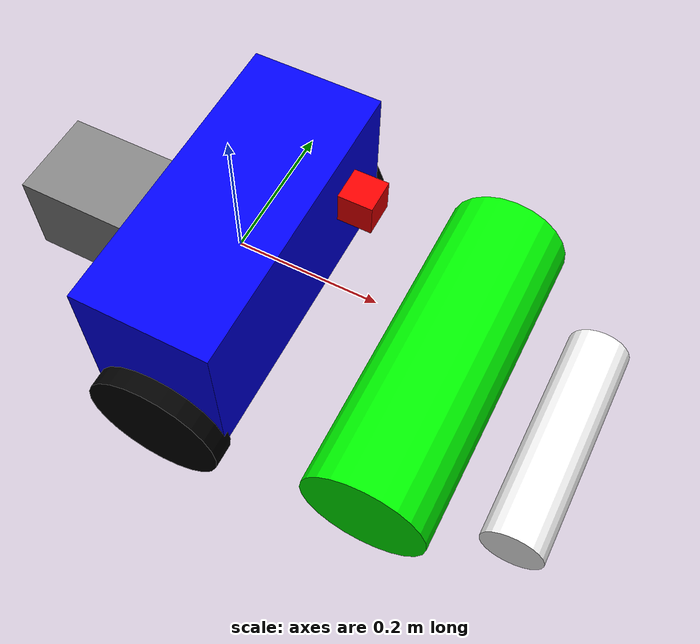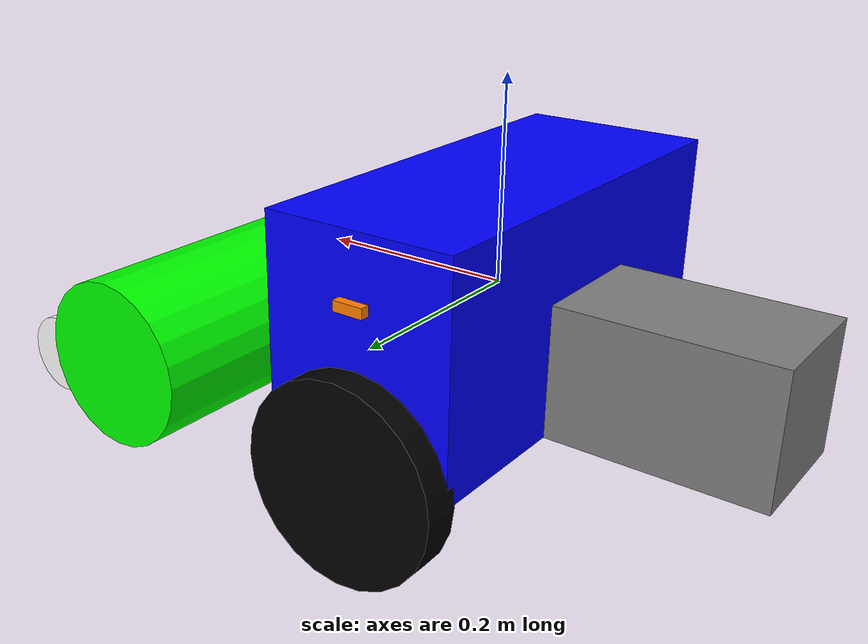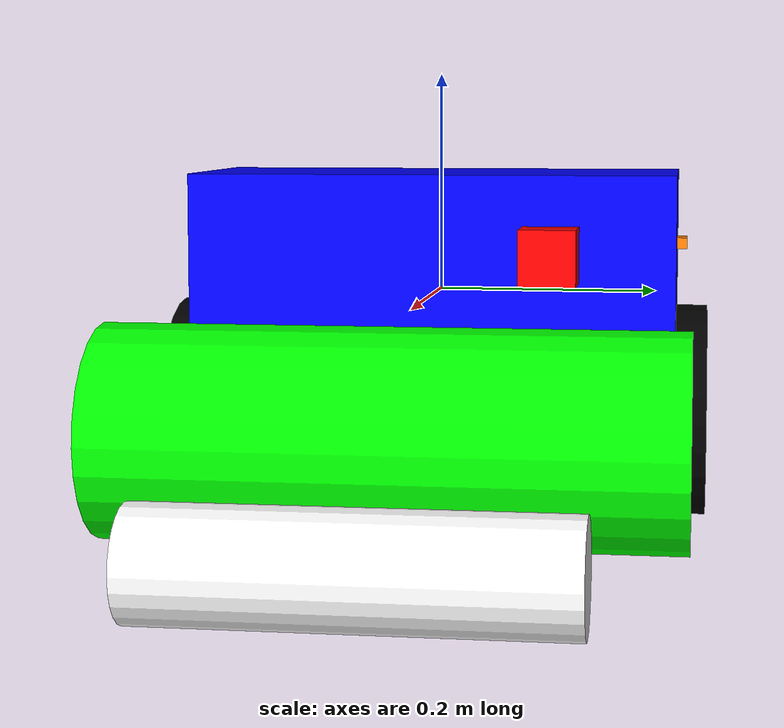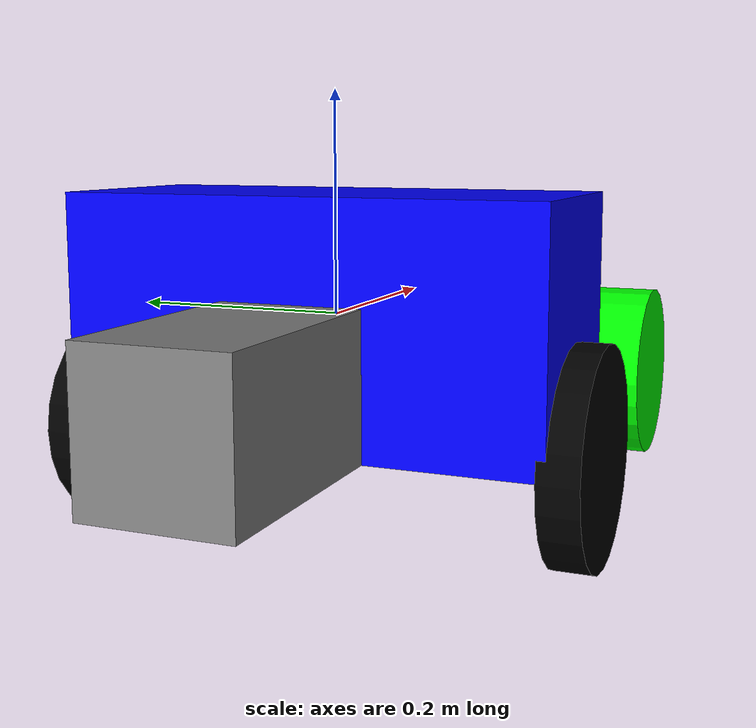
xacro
<?xml version="1.0"?>
<robot xmlns:xacro="http://www.ros.org/wiki/xacro" name="robotic_reel_mower">

  <!-- Xacro Properties for Dimensions -->
  <xacro:property name="chassis_length" value="0.19" />
  <xacro:property name="chassis_width" value="0.44" />
  <xacro:property name="chassis_height" value="0.22" />
  <xacro:property name="chassis_mass" value="2.27" />

  <xacro:property name="counterweight_length" value="0.21" />
  <xacro:property name="counterweight_width" value="0.13" />
  <xacro:property name="counterweight_height" value="0.13" />
  <xacro:property name="counterweight_mass" value="9.07" />

  <xacro:property name="wheel_radius" value="0.0975" />
  <xacro:property name="wheel_width" value="0.036" />
  <xacro:property name="wheel_mass" value="1.81" />
  <xacro:property name="wheel_separation" value="0.46" />

  <xacro:property name="front_roller_radius" value="0.04445" />
  <xacro:property name="front_roller_width" value="0.33" />
  <xacro:property name="front_roller_mass" value="0.45" />

  <xacro:property name="reel_radius" value="0.0875" />
  <xacro:property name="reel_width" value="0.47" />
  <xacro:property name="reel_mass" value="11.34" />

  <xacro:property name="reel_motor_mass" value="1.0" />

  <!-- IMU sensor position -->
  <xacro:property name="imu_x" value="0.0775" />
  <xacro:property name="imu_y" value="0.0875" />
  <xacro:property name="imu_z" value="0.169" />

  <!-- GPS sensor position -->
  <xacro:property name="gps_x" value="0.0" />
  <xacro:property name="gps_y" value="0.21415" />
  <xacro:property name="gps_z" value="0.253" />

  <!-- Base Link (using exactly the structure Gazebo expects) -->
  <link name="base_link">
    <inertial>
      <origin xyz="0 0 0" rpy="0 0 0"/>
      <mass value="${chassis_mass}"/>
      <inertia ixx="${chassis_mass * (chassis_width*chassis_width + chassis_height*chassis_height) / 12}"
               ixy="0.0" ixz="0.0"
               iyy="${chassis_mass * (chassis_length*chassis_length + chassis_height*chassis_height) / 12}"
               iyz="0.0"
               izz="${chassis_mass * (chassis_length*chassis_length + chassis_width*chassis_width) / 12}"/>
    </inertial>
    <visual>
      <origin xyz="0 0 0" rpy="0 0 0"/>
      <geometry>
        <box size="${chassis_length} ${chassis_width} ${chassis_height}"/>
      </geometry>
      <material name="blue">
        <color rgba="0.0 0.0 1.0 1.0"/>
      </material>
    </visual>
    <collision>
      <origin xyz="0 0 0" rpy="0 0 0"/>
      <geometry>
        <box size="${chassis_length} ${chassis_width} ${chassis_height}"/>
      </geometry>
    </collision>
  </link>

  <!-- Counterweight Link -->
  <link name="counterweight">
    <visual>
      <geometry>
        <box size="${counterweight_length} ${counterweight_width} ${counterweight_height}"/>
      </geometry>
      <material name="gray">
        <color rgba="0.5 0.5 0.5 1.0"/>
      </material>
    </visual>
    <collision>
      <geometry>
        <box size="${counterweight_length} ${counterweight_width} ${counterweight_height}"/>
      </geometry>
    </collision>
    <inertial>
      <mass value="${counterweight_mass}"/>
      <inertia ixx="${counterweight_mass * (counterweight_width*counterweight_width + counterweight_height*counterweight_height) / 12}"
               ixy="0.0" ixz="0.0"
               iyy="${counterweight_mass * (counterweight_length*counterweight_length + counterweight_height*counterweight_height) / 12}"
               iyz="0.0"
               izz="${counterweight_mass * (counterweight_length*counterweight_length + counterweight_width*counterweight_width) / 12}"/>
    </inertial>
  </link>

  <!-- Counterweight Joint -->
  <joint name="chassis_to_counterweight" type="fixed">
    <parent link="base_link"/>
    <child link="counterweight"/>
    <origin xyz="-${(chassis_length + counterweight_length)/2} 0.0 -${(chassis_height - counterweight_height)/2}" rpy="0 0 0"/>
  </joint>

  <!-- Right Wheel Link -->
  <link name="right_wheel">
    <visual>
      <origin xyz="0 0 0" rpy="${pi/2} 0 0"/>
      <geometry>
        <cylinder radius="${wheel_radius}" length="${wheel_width}"/>
      </geometry>
      <material name="black">
        <color rgba="0.0 0.0 0.0 1.0"/>
      </material>
    </visual>
    <collision>
      <origin xyz="0 0 0" rpy="${pi/2} 0 0"/>
      <geometry>
        <cylinder radius="${wheel_radius}" length="${wheel_width}"/>
      </geometry>
    </collision>
    <inertial>
      <mass value="${wheel_mass}"/>
      <inertia ixx="${wheel_mass * (3*wheel_radius*wheel_radius + wheel_width*wheel_width) / 12}"
               ixy="0.0" ixz="0.0"
               iyy="${wheel_mass * wheel_radius*wheel_radius / 2}"
               iyz="0.0"
               izz="${wheel_mass * (3*wheel_radius*wheel_radius + wheel_width*wheel_width) / 12}"/>
    </inertial>
  </link>

  <!-- Right Wheel Joint -->
  <joint name="right_wheel_joint" type="continuous">
    <parent link="base_link"/>
    <child link="right_wheel"/>
    <origin xyz="0.0 -${wheel_separation/2} -${chassis_height/2}" rpy="0 0 0"/>
    <axis xyz="0 1 0"/>
  </joint>

  <!-- Left Wheel Link -->
  <link name="left_wheel">
    <visual>
      <origin xyz="0 0 0" rpy="${pi/2} 0 0"/>
      <geometry>
        <cylinder radius="${wheel_radius}" length="${wheel_width}"/>
      </geometry>
      <material name="black">
        <color rgba="0.0 0.0 0.0 1.0"/>
      </material>
    </visual>
    <collision>
      <origin xyz="0 0 0" rpy="${pi/2} 0 0"/>
      <geometry>
        <cylinder radius="${wheel_radius}" length="${wheel_width}"/>
      </geometry>
    </collision>
    <inertial>
      <mass value="${wheel_mass}"/>
      <inertia ixx="${wheel_mass * (3*wheel_radius*wheel_radius + wheel_width*wheel_width) / 12}"
               ixy="0.0" ixz="0.0"
               iyy="${wheel_mass * wheel_radius*wheel_radius / 2}"
               iyz="0.0"
               izz="${wheel_mass * (3*wheel_radius*wheel_radius + wheel_width*wheel_width) / 12}"/>
    </inertial>
  </link>

  <!-- Left Wheel Joint -->
  <joint name="left_wheel_joint" type="continuous">
    <parent link="base_link"/>
    <child link="left_wheel"/>
    <origin xyz="0.0 ${wheel_separation/2} -${chassis_height/2}" rpy="0 0 0"/>
    <axis xyz="0 1 0"/>
  </joint>

  <!-- Front Roller Link -->
  <link name="front_roller">
    <visual>
      <origin xyz="0 0 0" rpy="${pi/2} 0 0"/>
      <geometry>
        <cylinder radius="${front_roller_radius}" length="${front_roller_width}"/>
      </geometry>
      <material name="white">
        <color rgba="1.0 1.0 1.0 1.0"/>
      </material>
    </visual>
    <collision>
      <origin xyz="0 0 0" rpy="${pi/2} 0 0"/>
      <geometry>
        <cylinder radius="${front_roller_radius}" length="${front_roller_width}"/>
      </geometry>
    </collision>
    <inertial>
      <mass value="${front_roller_mass}"/>
      <inertia ixx="${front_roller_mass * (3*front_roller_radius*front_roller_radius + front_roller_width*front_roller_width) / 12}"
               ixy="0.0" ixz="0.0"
               iyy="${front_roller_mass * front_roller_radius*front_roller_radius / 2}"
               iyz="0.0"
               izz="${front_roller_mass * (3*front_roller_radius*front_roller_radius + front_roller_width*front_roller_width) / 12}"/>
    </inertial>
  </link>

  <!-- Front Roller Joint -->
  <joint name="front_roller_joint" type="continuous">
    <parent link="base_link"/>
    <child link="front_roller"/>
    <origin xyz="0.48 0.0 -${chassis_height/2 + front_roller_radius}" rpy="0 0 0"/>
    <axis xyz="0 1 0"/>
  </joint>

  <!-- Reel Link -->
  <link name="reel">
    <visual>
      <origin xyz="0 0 0" rpy="${pi/2} 0 0"/>
      <geometry>
        <cylinder radius="${reel_radius}" length="${reel_width}"/>
      </geometry>
      <material name="green">
        <color rgba="0.0 1.0 0.0 1.0"/>
      </material>
    </visual>
    <collision>
      <origin xyz="0 0 0" rpy="${pi/2} 0 0"/>
      <geometry>
        <cylinder radius="${reel_radius}" length="${reel_width}"/>
      </geometry>
    </collision>
    <inertial>
      <mass value="${reel_mass}"/>
      <inertia ixx="${reel_mass * (3*reel_radius*reel_radius + reel_width*reel_width) / 12}"
               ixy="0.0" ixz="0.0"
               iyy="${reel_mass * reel_radius*reel_radius / 2}"
               iyz="0.0"
               izz="${reel_mass * (3*reel_radius*reel_radius + reel_width*reel_width) / 12}"/>
    </inertial>
  </link>

  <!-- Reel Joint -->
  <joint name="reel_joint" type="continuous">
    <parent link="base_link"/>
    <child link="reel"/>
    <origin xyz="0.30 0.0 -${chassis_height/2 - 0.02}" rpy="0 0 0"/>
    <axis xyz="0 1 0"/>
  </joint>

  <!-- Reel Motor Link -->
  <link name="reel_motor">
    <visual>
      <geometry>
        <box size="0.05 0.05 0.05"/>
      </geometry>
      <material name="red">
        <color rgba="1.0 0.0 0.0 1.0"/>
      </material>
    </visual>
    <collision>
      <geometry>
        <box size="0.05 0.05 0.05"/>
      </geometry>
    </collision>
    <inertial>
      <mass value="${reel_motor_mass}"/>
      <inertia ixx="${reel_motor_mass * (0.05*0.05 + 0.05*0.05) / 12}"
               ixy="0.0" ixz="0.0"
               iyy="${reel_motor_mass * (0.05*0.05 + 0.05*0.05) / 12}"
               iyz="0.0"
               izz="${reel_motor_mass * (0.05*0.05 + 0.05*0.05) / 12}"/>
    </inertial>
  </link>

  <!-- Reel Motor Joint -->
  <joint name="chassis_to_reel_motor" type="fixed">
    <parent link="base_link"/>
    <child link="reel_motor"/>
    <origin xyz="0.125 0.11 0.04" rpy="0 0 0"/>
  </joint>

  <!-- IMU Sensor Link -->
  <link name="imu_link">
    <visual>
      <geometry>
        <box size="0.02 0.02 0.01"/>
      </geometry>
      <material name="purple">
        <color rgba="0.5 0.0 0.5 1.0"/>
      </material>
    </visual>
    <collision>
      <geometry>
        <box size="0.02 0.02 0.01"/>
      </geometry>
    </collision>
    <inertial>
      <mass value="0.01"/>
      <inertia ixx="0.000001" ixy="0.0" ixz="0.0" iyy="0.000001" iyz="0.0" izz="0.000001"/>
    </inertial>
  </link>

  <!-- IMU Sensor Joint -->
  <joint name="base_to_imu" type="fixed">
    <parent link="base_link"/>
    <child link="imu_link"/>
    <origin xyz="${imu_x} ${imu_y} ${imu_z - wheel_radius - chassis_height/2}" rpy="0 0 0"/>
  </joint>

  <!-- GPS Sensor Link -->
  <link name="gps_link">
    <visual>
      <geometry>
        <box size="0.03 0.03 0.01"/>
      </geometry>
      <material name="orange">
        <color rgba="1.0 0.5 0.0 1.0"/>
      </material>
    </visual>
    <collision>
      <geometry>
        <box size="0.03 0.03 0.01"/>
      </geometry>
    </collision>
    <inertial>
      <mass value="0.01"/>
      <inertia ixx="0.000001" ixy="0.0" ixz="0.0" iyy="0.000001" iyz="0.0" izz="0.000001"/>
    </inertial>
  </link>

  <!-- GPS Sensor Joint -->
  <joint name="base_to_gps" type="fixed">
    <parent link="base_link"/>
    <child link="gps_link"/>
    <origin xyz="${gps_x} ${gps_y} ${gps_z - wheel_radius - chassis_height/2}" rpy="0 0 0"/>
  </joint>

  <!-- ros2_control Configuration -->
  <ros2_control name="GazeboSimSystem" type="system">
    <hardware>
      <plugin>gz_ros2_control/GazeboSimSystem</plugin>
    </hardware>

    <!-- Right Wheel Joint -->
    <joint name="right_wheel_joint">
      <command_interface name="velocity"/>
      <state_interface name="position"/>
      <state_interface name="velocity"/>
    </joint>

    <!-- Left Wheel Joint -->
    <joint name="left_wheel_joint">
      <command_interface name="velocity"/>
      <state_interface name="position"/>
      <state_interface name="velocity"/>
    </joint>

    <!-- Reel Joint -->
    <joint name="reel_joint">
      <command_interface name="velocity"/>
      <state_interface name="position"/>
      <state_interface name="velocity"/>
    </joint>
  </ros2_control>

  <!-- Gazebo ros2_control Plugin -->
  <gazebo>
    <plugin name="gz_ros2_control::GazeboSimROS2ControlPlugin" filename="libgz_ros2_control-system">
      <parameters>$(find ros2_mower)/config/mower_controllers.yaml</parameters>
    </plugin>
  </gazebo>

</robot>
